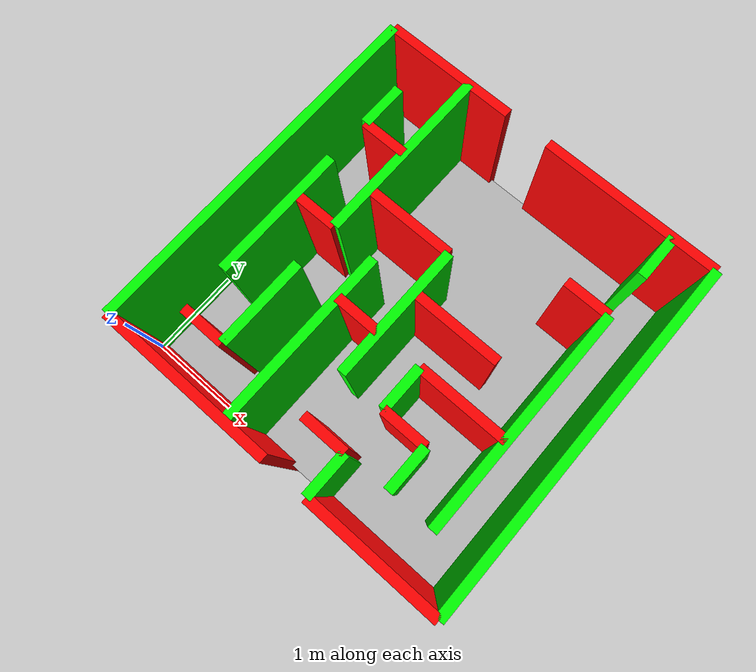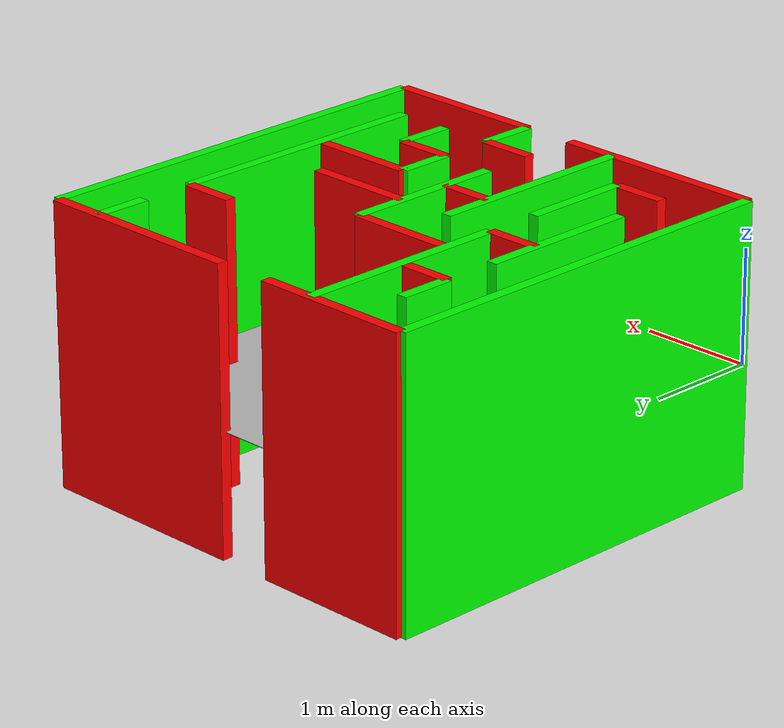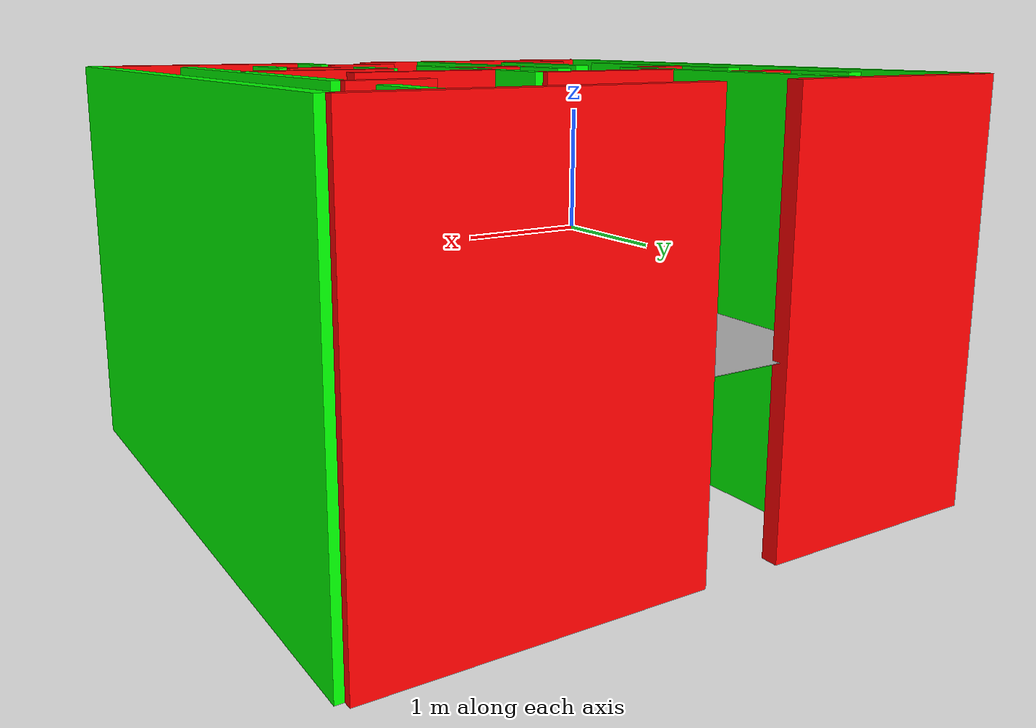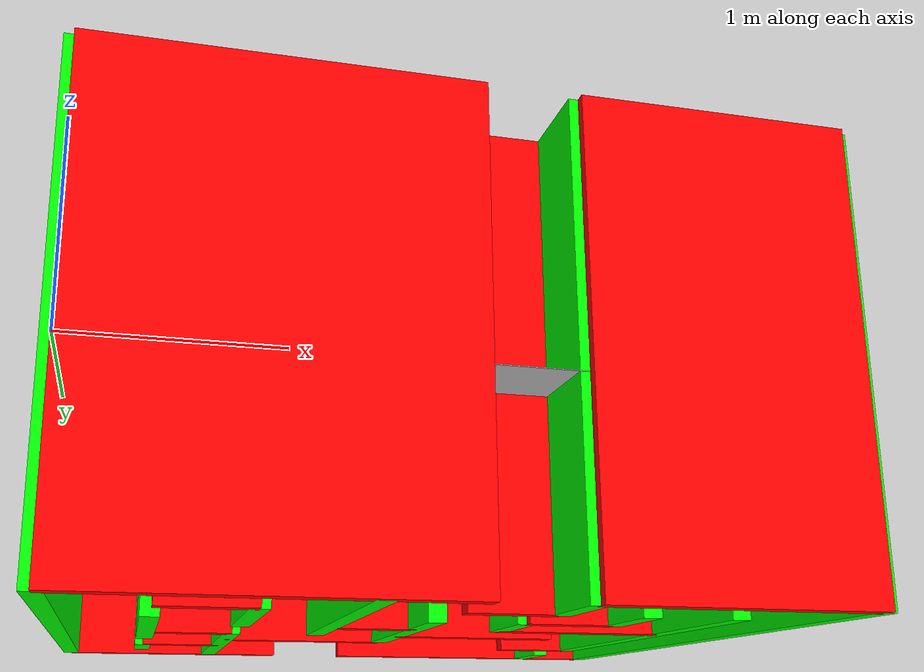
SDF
<?xml version="1.0" ?>
<sdf version="1.6">
  <model name="maze2">
    <static>true</static>
        <link name="floor">
            <pose>1.9304 1.9304 0 0 0 0</pose>
            <collision name="floor_collision">
                <geometry>
                <plane>
                    <normal>0 0 1</normal>
                    <size>3.8608 3.8608</size>
                </plane>
                </geometry>
            </collision>
            <visual name="floor_visual">
                <geometry>
                <plane>
                    <normal>0 0 1</normal>
                    <size>3.8608 3.8608</size>
                </plane>
                </geometry>
            </visual>
        </link>    <link name="wall_0">
      <pose>0.9652 0.0 0.1651 0 0 0</pose>
      <collision name="wall_0_collision">
        <geometry>
          <box>
            <size>1.9304 0.1 2.5</size>
          </box>
        </geometry>
      </collision>
      <visual name="wall_0_visual">
        <geometry>
          <box>
            <size>1.9304 0.1 2.5</size>
          </box>
        </geometry>
        <material>
          <ambient>1 0 0 1</ambient>
          <diffuse>1 0 0 1</diffuse>
          <specular>0.1 0.1 0.1 1</specular>
          <emissive>0 0 0 1</emissive>
        </material>
      </visual>
    </link>    <link name="wall_1">
      <pose>3.1369 0.0 0.1651 0 0 0</pose>
      <collision name="wall_1_collision">
        <geometry>
          <box>
            <size>1.4478 0.1 2.5</size>
          </box>
        </geometry>
      </collision>
      <visual name="wall_1_visual">
        <geometry>
          <box>
            <size>1.4478 0.1 2.5</size>
          </box>
        </geometry>
        <material>
          <ambient>1 0 0 1</ambient>
          <diffuse>1 0 0 1</diffuse>
          <specular>0.1 0.1 0.1 1</specular>
          <emissive>0 0 0 1</emissive>
        </material>
      </visual>
    </link>    <link name="wall_2">
      <pose>0.0 1.9304 0.1651 0 0 1.5707963267948966</pose>
      <collision name="wall_2_collision">
        <geometry>
          <box>
            <size>3.8608 0.1 2.5</size>
          </box>
        </geometry>
      </collision>
      <visual name="wall_2_visual">
        <geometry>
          <box>
            <size>3.8608 0.1 2.5</size>
          </box>
        </geometry>
        <material>
          <ambient>0 1 0 1</ambient>
          <diffuse>0 1 0 1</diffuse>
          <specular>0.1 0.1 0.1 1</specular>
          <emissive>0 0 0 1</emissive>
        </material>
      </visual>
    </link>    <link name="wall_3">
      <pose>3.8608 1.9304 0.1651 0 0 1.5707963267948966</pose>
      <collision name="wall_3_collision">
        <geometry>
          <box>
            <size>3.8608 0.1 2.5</size>
          </box>
        </geometry>
      </collision>
      <visual name="wall_3_visual">
        <geometry>
          <box>
            <size>3.8608 0.1 2.5</size>
          </box>
        </geometry>
        <material>
          <ambient>0 1 0 1</ambient>
          <diffuse>0 1 0 1</diffuse>
          <specular>0.1 0.1 0.1 1</specular>
          <emissive>0 0 0 1</emissive>
        </material>
      </visual>
    </link>    <link name="wall_4">
      <pose>0.7239 3.8608 0.1651 0 0 0</pose>
      <collision name="wall_4_collision">
        <geometry>
          <box>
            <size>1.4478 0.1 2.5</size>
          </box>
        </geometry>
      </collision>
      <visual name="wall_4_visual">
        <geometry>
          <box>
            <size>1.4478 0.1 2.5</size>
          </box>
        </geometry>
        <material>
          <ambient>1 0 0 1</ambient>
          <diffuse>1 0 0 1</diffuse>
          <specular>0.1 0.1 0.1 1</specular>
          <emissive>0 0 0 1</emissive>
        </material>
      </visual>
    </link>    <link name="wall_5">
      <pose>2.8956 3.8608 0.1651 0 0 0</pose>
      <collision name="wall_5_collision">
        <geometry>
          <box>
            <size>1.9304 0.1 2.5</size>
          </box>
        </geometry>
      </collision>
      <visual name="wall_5_visual">
        <geometry>
          <box>
            <size>1.9304 0.1 2.5</size>
          </box>
        </geometry>
        <material>
          <ambient>1 0 0 1</ambient>
          <diffuse>1 0 0 1</diffuse>
          <specular>0.1 0.1 0.1 1</specular>
          <emissive>0 0 0 1</emissive>
        </material>
      </visual>
    </link>    <link name="wall_6">
      <pose>0.7239 0.4826 0.1651 0 0 0</pose>
      <collision name="wall_6_collision">
        <geometry>
          <box>
            <size>0.4826 0.1 2.5</size>
          </box>
        </geometry>
      </collision>
      <visual name="wall_6_visual">
        <geometry>
          <box>
            <size>0.4826 0.1 2.5</size>
          </box>
        </geometry>
        <material>
          <ambient>1 0 0 1</ambient>
          <diffuse>1 0 0 1</diffuse>
          <specular>0.1 0.1 0.1 1</specular>
          <emissive>0 0 0 1</emissive>
        </material>
      </visual>
    </link>    <link name="wall_7">
      <pose>0.9652 0.9652 0.1651 0 0 1.5707963267948966</pose>
      <collision name="wall_7_collision">
        <geometry>
          <box>
            <size>0.9652000000000001 0.1 2.5</size>
          </box>
        </geometry>
      </collision>
      <visual name="wall_7_visual">
        <geometry>
          <box>
            <size>0.9652000000000001 0.1 2.5</size>
          </box>
        </geometry>
        <material>
          <ambient>0 1 0 1</ambient>
          <diffuse>0 1 0 1</diffuse>
          <specular>0.1 0.1 0.1 1</specular>
          <emissive>0 0 0 1</emissive>
        </material>
      </visual>
    </link>    <link name="wall_8">
      <pose>1.6890999999999998 1.4478 0.1651 0 0 0</pose>
      <collision name="wall_8_collision">
        <geometry>
          <box>
            <size>0.4825999999999999 0.1 2.5</size>
          </box>
        </geometry>
      </collision>
      <visual name="wall_8_visual">
        <geometry>
          <box>
            <size>0.4825999999999999 0.1 2.5</size>
          </box>
        </geometry>
        <material>
          <ambient>1 0 0 1</ambient>
          <diffuse>1 0 0 1</diffuse>
          <specular>0.1 0.1 0.1 1</specular>
          <emissive>0 0 0 1</emissive>
        </material>
      </visual>
    </link>    <link name="wall_9">
      <pose>1.4478 0.9652 0.1651 0 0 1.5707963267948966</pose>
      <collision name="wall_9_collision">
        <geometry>
          <box>
            <size>1.9304 0.1 2.5</size>
          </box>
        </geometry>
      </collision>
      <visual name="wall_9_visual">
        <geometry>
          <box>
            <size>1.9304 0.1 2.5</size>
          </box>
        </geometry>
        <material>
          <ambient>0 1 0 1</ambient>
          <diffuse>0 1 0 1</diffuse>
          <specular>0.1 0.1 0.1 1</specular>
          <emissive>0 0 0 1</emissive>
        </material>
      </visual>
    </link>    <link name="wall_10">
      <pose>2.1717 0.4826 0.1651 0 0 0</pose>
      <collision name="wall_10_collision">
        <geometry>
          <box>
            <size>0.4825999999999999 0.1 2.5</size>
          </box>
        </geometry>
      </collision>
      <visual name="wall_10_visual">
        <geometry>
          <box>
            <size>0.4825999999999999 0.1 2.5</size>
          </box>
        </geometry>
        <material>
          <ambient>1 0 0 1</ambient>
          <diffuse>1 0 0 1</diffuse>
          <specular>0.1 0.1 0.1 1</specular>
          <emissive>0 0 0 1</emissive>
        </material>
      </visual>
    </link>    <link name="wall_11">
      <pose>2.413 0.2413 0.1651 0 0 1.5707963267948966</pose>
      <collision name="wall_11_collision">
        <geometry>
          <box>
            <size>0.4826 0.1 2.5</size>
          </box>
        </geometry>
      </collision>
      <visual name="wall_11_visual">
        <geometry>
          <box>
            <size>0.4826 0.1 2.5</size>
          </box>
        </geometry>
        <material>
          <ambient>0 1 0 1</ambient>
          <diffuse>0 1 0 1</diffuse>
          <specular>0.1 0.1 0.1 1</specular>
          <emissive>0 0 0 1</emissive>
        </material>
      </visual>
    </link>    <link name="wall_12">
      <pose>0.4826 1.6890999999999998 0.1651 0 0 1.5707963267948966</pose>
      <collision name="wall_12_collision">
        <geometry>
          <box>
            <size>1.4478 0.1 2.5</size>
          </box>
        </geometry>
      </collision>
      <visual name="wall_12_visual">
        <geometry>
          <box>
            <size>1.4478 0.1 2.5</size>
          </box>
        </geometry>
        <material>
          <ambient>0 1 0 1</ambient>
          <diffuse>0 1 0 1</diffuse>
          <specular>0.1 0.1 0.1 1</specular>
          <emissive>0 0 0 1</emissive>
        </material>
      </visual>
    </link>    <link name="wall_13">
      <pose>0.7239 1.9304 0.1651 0 0 0</pose>
      <collision name="wall_13_collision">
        <geometry>
          <box>
            <size>0.4826 0.1 2.5</size>
          </box>
        </geometry>
      </collision>
      <visual name="wall_13_visual">
        <geometry>
          <box>
            <size>0.4826 0.1 2.5</size>
          </box>
        </geometry>
        <material>
          <ambient>1 0 0 1</ambient>
          <diffuse>1 0 0 1</diffuse>
          <specular>0.1 0.1 0.1 1</specular>
          <emissive>0 0 0 1</emissive>
        </material>
      </visual>
    </link>    <link name="wall_14">
      <pose>0.9652 2.8956 0.1651 0 0 1.5707963267948966</pose>
      <collision name="wall_14_collision">
        <geometry>
          <box>
            <size>1.9304 0.1 2.5</size>
          </box>
        </geometry>
      </collision>
      <visual name="wall_14_visual">
        <geometry>
          <box>
            <size>1.9304 0.1 2.5</size>
          </box>
        </geometry>
        <material>
          <ambient>0 1 0 1</ambient>
          <diffuse>0 1 0 1</diffuse>
          <specular>0.1 0.1 0.1 1</specular>
          <emissive>0 0 0 1</emissive>
        </material>
      </visual>
    </link>    <link name="wall_15">
      <pose>0.4826 3.1369 0.1651 0 0 1.5707963267948966</pose>
      <collision name="wall_15_collision">
        <geometry>
          <box>
            <size>0.4825999999999997 0.1 2.5</size>
          </box>
        </geometry>
      </collision>
      <visual name="wall_15_visual">
        <geometry>
          <box>
            <size>0.4825999999999997 0.1 2.5</size>
          </box>
        </geometry>
        <material>
          <ambient>0 1 0 1</ambient>
          <diffuse>0 1 0 1</diffuse>
          <specular>0.1 0.1 0.1 1</specular>
          <emissive>0 0 0 1</emissive>
        </material>
      </visual>
    </link>    <link name="wall_16">
      <pose>0.7239 2.8956 0.1651 0 0 0</pose>
      <collision name="wall_16_collision">
        <geometry>
          <box>
            <size>0.4826 0.1 2.5</size>
          </box>
        </geometry>
      </collision>
      <visual name="wall_16_visual">
        <geometry>
          <box>
            <size>0.4826 0.1 2.5</size>
          </box>
        </geometry>
        <material>
          <ambient>1 0 0 1</ambient>
          <diffuse>1 0 0 1</diffuse>
          <specular>0.1 0.1 0.1 1</specular>
          <emissive>0 0 0 1</emissive>
        </material>
      </visual>
    </link>    <link name="wall_17">
      <pose>1.4478 2.413 0.1651 0 0 0</pose>
      <collision name="wall_17_collision">
        <geometry>
          <box>
            <size>0.9652 0.1 2.5</size>
          </box>
        </geometry>
      </collision>
      <visual name="wall_17_visual">
        <geometry>
          <box>
            <size>0.9652 0.1 2.5</size>
          </box>
        </geometry>
        <material>
          <ambient>1 0 0 1</ambient>
          <diffuse>1 0 0 1</diffuse>
          <specular>0.1 0.1 0.1 1</specular>
          <emissive>0 0 0 1</emissive>
        </material>
      </visual>
    </link>    <link name="wall_18">
      <pose>1.9304 1.6890999999999998 0.1651 0 0 1.5707963267948966</pose>
      <collision name="wall_18_collision">
        <geometry>
          <box>
            <size>1.4478 0.1 2.5</size>
          </box>
        </geometry>
      </collision>
      <visual name="wall_18_visual">
        <geometry>
          <box>
            <size>1.4478 0.1 2.5</size>
          </box>
        </geometry>
        <material>
          <ambient>0 1 0 1</ambient>
          <diffuse>0 1 0 1</diffuse>
          <specular>0.1 0.1 0.1 1</specular>
          <emissive>0 0 0 1</emissive>
        </material>
      </visual>
    </link>    <link name="wall_19">
      <pose>2.413 1.9304 0.1651 0 0 0</pose>
      <collision name="wall_19_collision">
        <geometry>
          <box>
            <size>0.9652000000000001 0.1 2.5</size>
          </box>
        </geometry>
      </collision>
      <visual name="wall_19_visual">
        <geometry>
          <box>
            <size>0.9652000000000001 0.1 2.5</size>
          </box>
        </geometry>
        <material>
          <ambient>1 0 0 1</ambient>
          <diffuse>1 0 0 1</diffuse>
          <specular>0.1 0.1 0.1 1</specular>
          <emissive>0 0 0 1</emissive>
        </material>
      </visual>
    </link>    <link name="wall_20">
      <pose>2.8956 0.7239 0.1651 0 0 1.5707963267948966</pose>
      <collision name="wall_20_collision">
        <geometry>
          <box>
            <size>0.4826 0.1 2.5</size>
          </box>
        </geometry>
      </collision>
      <visual name="wall_20_visual">
        <geometry>
          <box>
            <size>0.4826 0.1 2.5</size>
          </box>
        </geometry>
        <material>
          <ambient>0 1 0 1</ambient>
          <diffuse>0 1 0 1</diffuse>
          <specular>0.1 0.1 0.1 1</specular>
          <emissive>0 0 0 1</emissive>
        </material>
      </visual>
    </link>    <link name="wall_21">
      <pose>2.6543 0.9652 0.1651 0 0 0</pose>
      <collision name="wall_21_collision">
        <geometry>
          <box>
            <size>0.48260000000000014 0.1 2.5</size>
          </box>
        </geometry>
      </collision>
      <visual name="wall_21_visual">
        <geometry>
          <box>
            <size>0.48260000000000014 0.1 2.5</size>
          </box>
        </geometry>
        <material>
          <ambient>1 0 0 1</ambient>
          <diffuse>1 0 0 1</diffuse>
          <specular>0.1 0.1 0.1 1</specular>
          <emissive>0 0 0 1</emissive>
        </material>
      </visual>
    </link>    <link name="wall_22">
      <pose>2.413 1.2065 0.1651 0 0 1.5707963267948966</pose>
      <collision name="wall_22_collision">
        <geometry>
          <box>
            <size>0.48260000000000003 0.1 2.5</size>
          </box>
        </geometry>
      </collision>
      <visual name="wall_22_visual">
        <geometry>
          <box>
            <size>0.48260000000000003 0.1 2.5</size>
          </box>
        </geometry>
        <material>
          <ambient>0 1 0 1</ambient>
          <diffuse>0 1 0 1</diffuse>
          <specular>0.1 0.1 0.1 1</specular>
          <emissive>0 0 0 1</emissive>
        </material>
      </visual>
    </link>    <link name="wall_23">
      <pose>2.8956 1.4478 0.1651 0 0 0</pose>
      <collision name="wall_23_collision">
        <geometry>
          <box>
            <size>0.9651999999999998 0.1 2.5</size>
          </box>
        </geometry>
      </collision>
      <visual name="wall_23_visual">
        <geometry>
          <box>
            <size>0.9651999999999998 0.1 2.5</size>
          </box>
        </geometry>
        <material>
          <ambient>1 0 0 1</ambient>
          <diffuse>1 0 0 1</diffuse>
          <specular>0.1 0.1 0.1 1</specular>
          <emissive>0 0 0 1</emissive>
        </material>
      </visual>
    </link>    <link name="wall_24">
      <pose>3.3781999999999996 1.6891 0.1651 0 0 1.5707963267948966</pose>
      <collision name="wall_24_collision">
        <geometry>
          <box>
            <size>2.413 0.1 2.5</size>
          </box>
        </geometry>
      </collision>
      <visual name="wall_24_visual">
        <geometry>
          <box>
            <size>2.413 0.1 2.5</size>
          </box>
        </geometry>
        <material>
          <ambient>0 1 0 1</ambient>
          <diffuse>0 1 0 1</diffuse>
          <specular>0.1 0.1 0.1 1</specular>
          <emissive>0 0 0 1</emissive>
        </material>
      </visual>
    </link>    <link name="wall_25">
      <pose>3.1369 2.8956 0.1651 0 0 0</pose>
      <collision name="wall_25_collision">
        <geometry>
          <box>
            <size>0.4825999999999997 0.1 2.5</size>
          </box>
        </geometry>
      </collision>
      <visual name="wall_25_visual">
        <geometry>
          <box>
            <size>0.4825999999999997 0.1 2.5</size>
          </box>
        </geometry>
        <material>
          <ambient>1 0 0 1</ambient>
          <diffuse>1 0 0 1</diffuse>
          <specular>0.1 0.1 0.1 1</specular>
          <emissive>0 0 0 1</emissive>
        </material>
      </visual>
    </link>    <link name="wall_26">
      <pose>3.3781999999999996 3.6194999999999995 0.1651 0 0 1.5707963267948966</pose>
      <collision name="wall_26_collision">
        <geometry>
          <box>
            <size>0.48260000000000014 0.1 2.5</size>
          </box>
        </geometry>
      </collision>
      <visual name="wall_26_visual">
        <geometry>
          <box>
            <size>0.48260000000000014 0.1 2.5</size>
          </box>
        </geometry>
        <material>
          <ambient>0 1 0 1</ambient>
          <diffuse>0 1 0 1</diffuse>
          <specular>0.1 0.1 0.1 1</specular>
          <emissive>0 0 0 1</emissive>
        </material>
      </visual>
    </link>
  </model>
</sdf>
